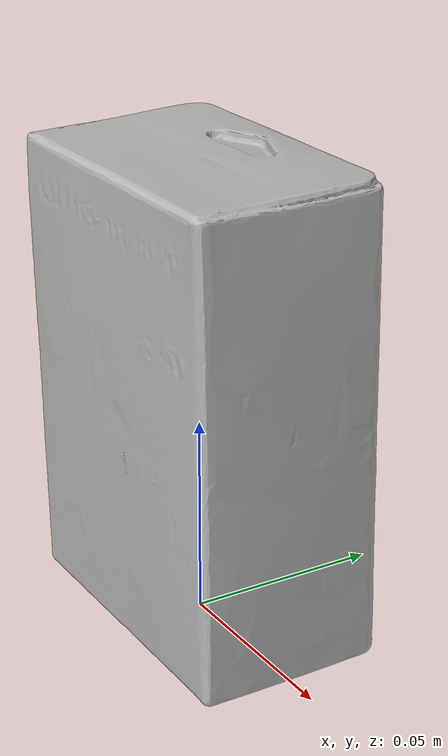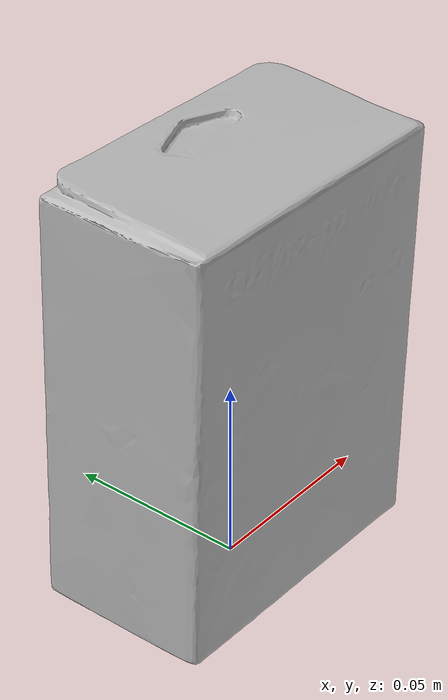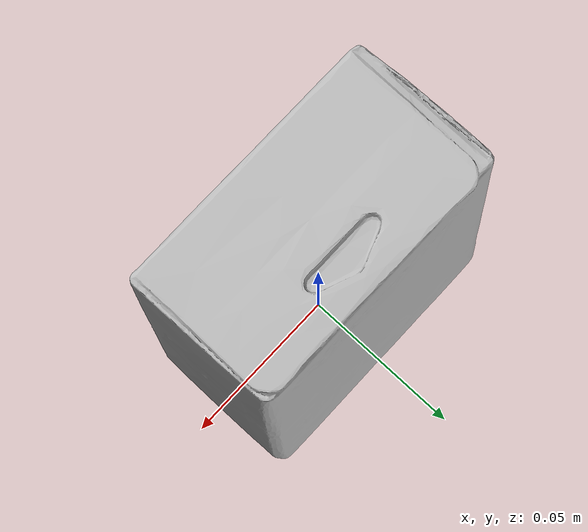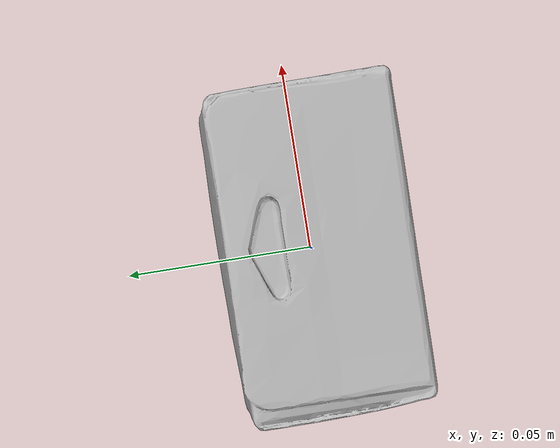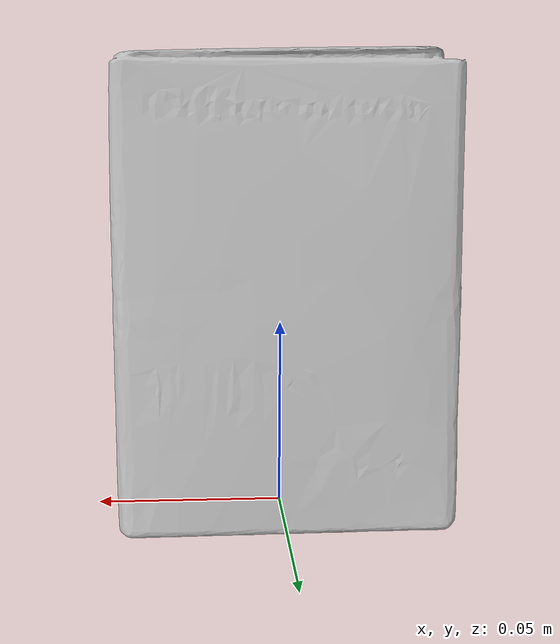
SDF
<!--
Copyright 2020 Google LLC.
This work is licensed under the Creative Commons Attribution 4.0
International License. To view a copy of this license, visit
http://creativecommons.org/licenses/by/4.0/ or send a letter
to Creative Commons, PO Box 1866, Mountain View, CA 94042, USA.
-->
<?xml version="1.0" ?>
<sdf version="1.6">
  <model name="Office_Depot_HP_61Tricolor_Ink_Cartridge">
    <link name="link_0">
      <visual name="visual">
        <geometry>
          <mesh>
            <uri>meshes/model.obj</uri>
          </mesh>
        </geometry>
      </visual>
      <collision name="collision_0">
        <geometry>
          <mesh>
            <uri>meshes/model.obj</uri>
          </mesh>
        </geometry>
      </collision>
    </link>
  </model>
</sdf>
